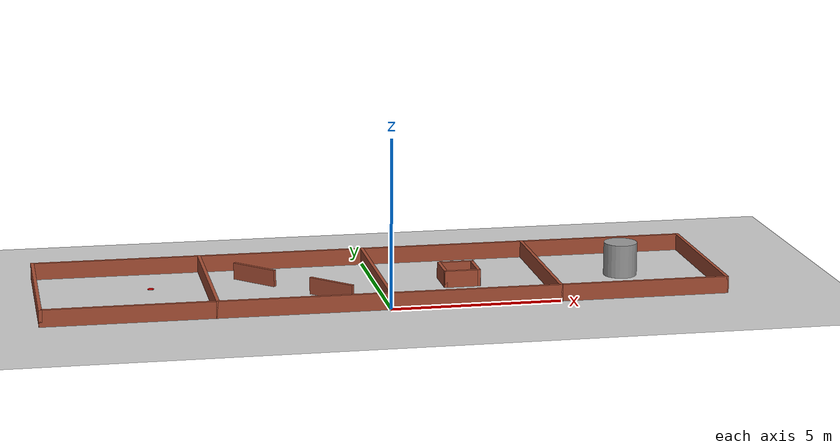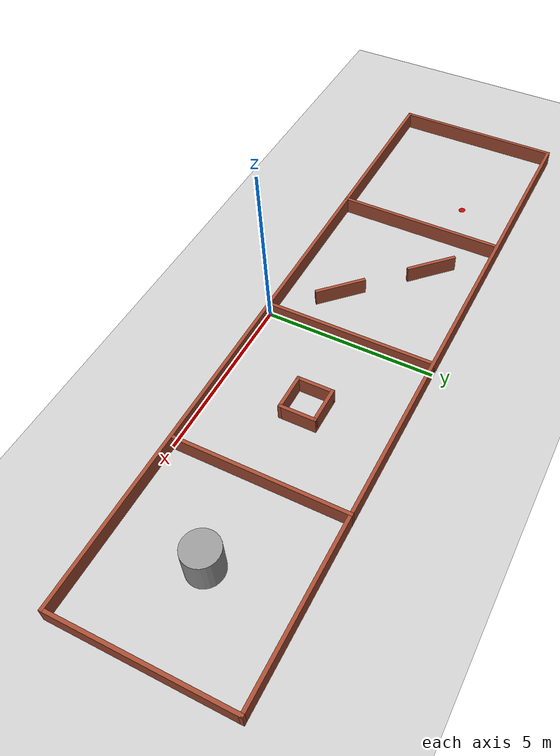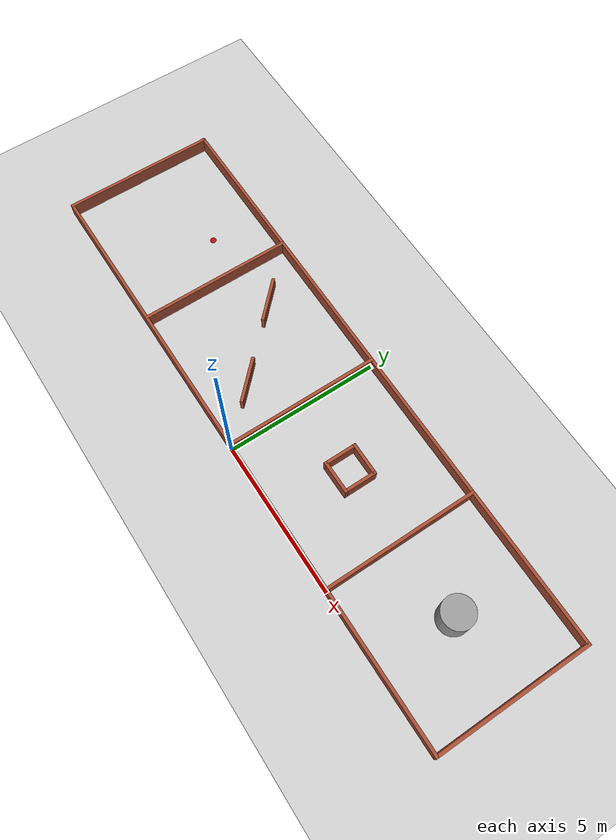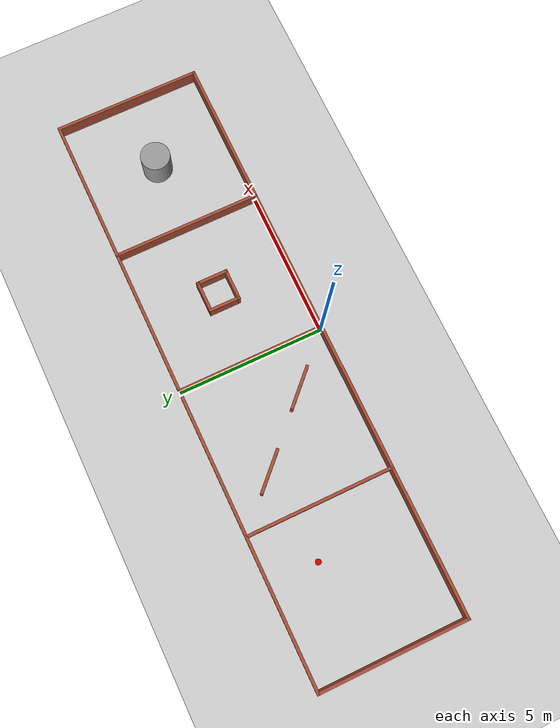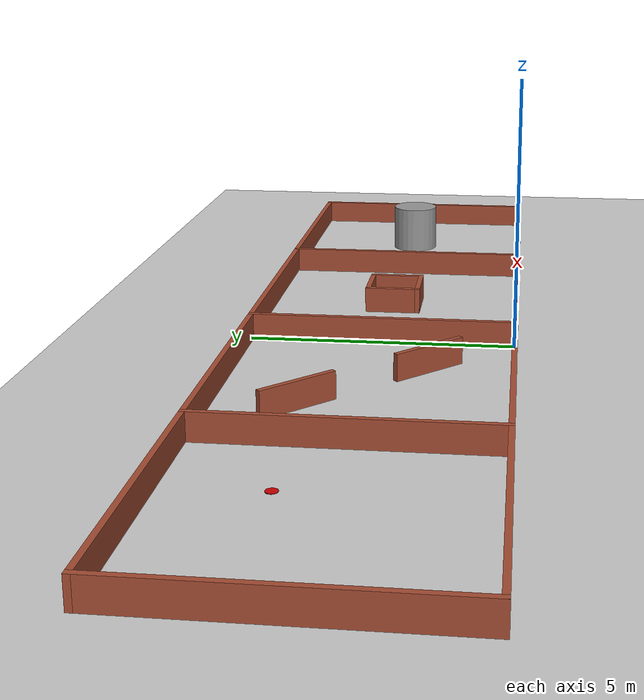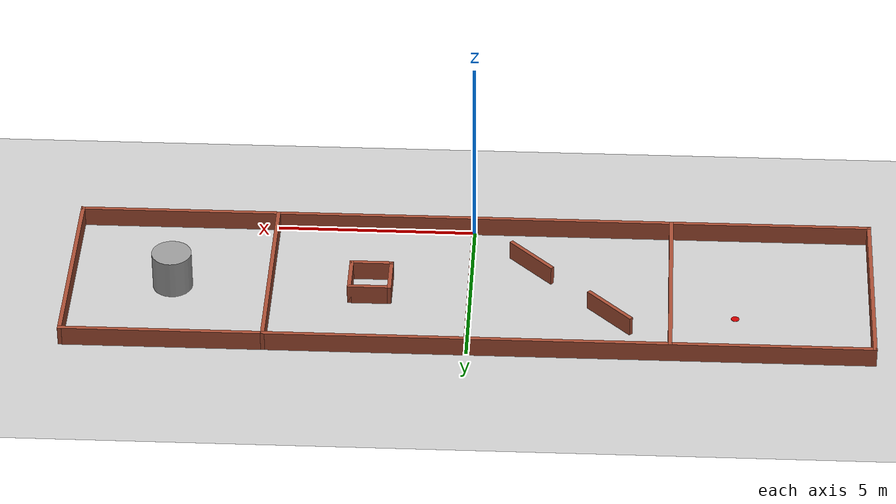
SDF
<sdf version="1.7">
 <world name="default">
  <light name="sun" type="directional">
   <pose>0 0 10 0 -0 0</pose>
   <diffuse>0.8 0.8 0.8 1</diffuse>
   <specular>0.2 0.2 0.2 1</specular>
   <attenuation>
    <range>1000</range>
    <constant>0.9</constant>
    <linear>0.01</linear>
    <quadratic>0.001</quadratic>
   </attenuation>
   <direction>-0.5 0.1 -0.9</direction>
   <spot><inner_angle>0</inner_angle><outer_angle>0</outer_angle><falloff>0</falloff></spot>
  </light>
  <model name="ground_plane">
   <static>1</static>
   <link name="link">
    <collision name="collision">
     <geometry><plane><normal>0 0 1</normal><size>100 100</size></plane></geometry>
     <surface>
      <contact><collide_bitmask>65535</collide_bitmask></contact>
      <friction><ode><mu>100</mu><mu2>50</mu2></ode></friction>
     </surface>
    </collision>
    <visual name="visual">
     <cast_shadows>0</cast_shadows>
     <geometry><plane><normal>0 0 1</normal><size>100 100</size></plane></geometry>
     <material>
      <script><uri>file://media/materials/scripts/gazebo.material</uri><name>Gazebo/Grey</name></script>
     </material>
    </visual>
   </link>
  </model>
  <gravity>0 0 -9.8</gravity>
  <magnetic_field>6e-06 2.3e-05 -4.2e-05</magnetic_field>
  <atmosphere type="adiabatic"/>
  <physics type="ode">
   <max_step_size>0.001</max_step_size>
   <real_time_factor>1</real_time_factor>
   <real_time_update_rate>1000</real_time_update_rate>
  </physics>
  <scene><ambient>0.4 0.4 0.4 1</ambient><background>0.7 0.7 0.7 1</background><shadows>1</shadows></scene>
  <spherical_coordinates>
   <surface_model>EARTH_WGS84</surface_model>
   <latitude_deg>0</latitude_deg>
   <longitude_deg>0</longitude_deg>
   <elevation>0</elevation>
   <heading_deg>0</heading_deg>
  </spherical_coordinates>
  <model name="tb3_smp_0">
   <pose>-0 2.5 0 0 -0 0</pose>
   <link name="Wall_0">
    <collision name="Wall_0_Collision">
     <geometry><box><size>20.1 0.1 0.5</size></box></geometry>
     <pose>0 0 0.25 0 -0 0</pose>
    </collision>
    <visual name="Wall_0_Visual">
     <pose>0 0 0.25 0 -0 0</pose>
     <geometry><box><size>20.1 0.1 0.5</size></box></geometry>
     <material>
      <script><uri>file://media/materials/scripts/gazebo.material</uri><name>Gazebo/Bricks</name></script>
      <ambient>0.760784 0.662745 0.627451 1</ambient>
     </material>
     <meta><layer>0</layer></meta>
    </visual>
    <pose>0 2.5 0 0 -0 3.14159</pose>
   </link>
   <link name="Wall_1">
    <collision name="Wall_1_Collision">
     <geometry><box><size>5.1 0.1 0.5</size></box></geometry>
     <pose>0 0 0.25 0 -0 0</pose>
    </collision>
    <visual name="Wall_1_Visual">
     <pose>0 0 0.25 0 -0 0</pose>
     <geometry><box><size>5.1 0.1 0.5</size></box></geometry>
     <material>
      <script><uri>file://media/materials/scripts/gazebo.material</uri><name>Gazebo/Bricks</name></script>
      <ambient>0.760784 0.662745 0.627451 1</ambient>
     </material>
     <meta><layer>0</layer></meta>
    </visual>
    <pose>-10 0 0 0 -0 -1.5708</pose>
   </link>
   <link name="Wall_17">
    <collision name="Wall_17_Collision">
     <geometry><box><size>1.51421 0.1 0.5</size></box></geometry>
     <pose>0 0 0.25 0 -0 0</pose>
    </collision>
    <visual name="Wall_17_Visual">
     <pose>0 0 0.25 0 -0 0</pose>
     <geometry><box><size>1.51421 0.1 0.5</size></box></geometry>
     <material>
      <script><uri>file://media/materials/scripts/gazebo.material</uri><name>Gazebo/Bricks</name></script>
      <ambient>0.760784 0.662745 0.627451 1</ambient>
     </material>
     <meta><layer>0</layer></meta>
    </visual>
    <pose>-3.5 1 0 0 -0 2.35619</pose>
   </link>
   <link name="Wall_19">
    <collision name="Wall_19_Collision">
     <geometry><box><size>1.51421 0.1 0.5</size></box></geometry>
     <pose>0 0 0.25 0 -0 0</pose>
    </collision>
    <visual name="Wall_19_Visual">
     <pose>0 0 0.25 0 -0 0</pose>
     <geometry><box><size>1.51421 0.1 0.5</size></box></geometry>
     <material>
      <script><uri>file://media/materials/scripts/gazebo.material</uri><name>Gazebo/Bricks</name></script>
      <ambient>0.760784 0.662745 0.627451 1</ambient>
     </material>
     <meta><layer>0</layer></meta>
    </visual>
    <pose>-1.5 -1 0 0 -0 2.35619</pose>
   </link>
   <link name="Wall_2">
    <collision name="Wall_2_Collision">
     <geometry><box><size>20.1 0.1 0.5</size></box></geometry>
     <pose>0 0 0.25 0 -0 0</pose>
    </collision>
    <visual name="Wall_2_Visual">
     <pose>0 0 0.25 0 -0 0</pose>
     <geometry><box><size>20.1 0.1 0.5</size></box></geometry>
     <material>
      <script><uri>file://media/materials/scripts/gazebo.material</uri><name>Gazebo/Bricks</name></script>
      <ambient>0.760784 0.662745 0.627451 1</ambient>
     </material>
     <meta><layer>0</layer></meta>
    </visual>
    <pose>0 -2.5 0 0 -0 0</pose>
   </link>
   <link name="Wall_21">
    <collision name="Wall_21_Collision">
     <geometry><box><size>1.1 0.1 0.5</size></box></geometry>
     <pose>0 0 0.25 0 -0 0</pose>
    </collision>
    <visual name="Wall_21_Visual">
     <pose>0 0 0.25 0 -0 0</pose>
     <geometry><box><size>1.1 0.1 0.5</size></box></geometry>
     <material>
      <script><uri>file://media/materials/scripts/gazebo.material</uri><name>Gazebo/Bricks</name></script>
      <ambient>0.760784 0.662745 0.627451 1</ambient>
     </material>
     <meta><layer>0</layer></meta>
    </visual>
    <pose>2.5 -0.5 0 0 -0 3.14159</pose>
   </link>
   <link name="Wall_22">
    <collision name="Wall_22_Collision">
     <geometry><box><size>1.1 0.1 0.5</size></box></geometry>
     <pose>0 0 0.25 0 -0 0</pose>
    </collision>
    <visual name="Wall_22_Visual">
     <pose>0 0 0.25 0 -0 0</pose>
     <geometry><box><size>1.1 0.1 0.5</size></box></geometry>
     <material>
      <script><uri>file://media/materials/scripts/gazebo.material</uri><name>Gazebo/Bricks</name></script>
      <ambient>0.760784 0.662745 0.627451 1</ambient>
     </material>
     <meta><layer>0</layer></meta>
    </visual>
    <pose>2 0 0 0 -0 1.5708</pose>
   </link>
   <link name="Wall_23">
    <collision name="Wall_23_Collision">
     <geometry><box><size>1.1 0.1 0.5</size></box></geometry>
     <pose>0 0 0.25 0 -0 0</pose>
    </collision>
    <visual name="Wall_23_Visual">
     <pose>0 0 0.25 0 -0 0</pose>
     <geometry><box><size>1.1 0.1 0.5</size></box></geometry>
     <material>
      <script><uri>file://media/materials/scripts/gazebo.material</uri><name>Gazebo/Bricks</name></script>
      <ambient>0.760784 0.662745 0.627451 1</ambient>
     </material>
     <meta><layer>0</layer></meta>
    </visual>
    <pose>2.5 0.5 0 0 -0 0</pose>
   </link>
   <link name="Wall_25">
    <collision name="Wall_25_Collision">
     <geometry><box><size>1.1 0.1 0.5</size></box></geometry>
     <pose>0 0 0.25 0 -0 0</pose>
    </collision>
    <visual name="Wall_25_Visual">
     <pose>0 0 0.25 0 -0 0</pose>
     <geometry><box><size>1.1 0.1 0.5</size></box></geometry>
     <material>
      <script><uri>file://media/materials/scripts/gazebo.material</uri><name>Gazebo/Bricks</name></script>
      <ambient>0.760784 0.662745 0.627451 1</ambient>
     </material>
     <meta><layer>0</layer></meta>
    </visual>
    <pose>3 0 0 0 -0 -1.5708</pose>
   </link>
   <link name="Wall_3">
    <collision name="Wall_3_Collision">
     <geometry><box><size>5.1 0.1 0.5</size></box></geometry>
     <pose>0 0 0.25 0 -0 0</pose>
    </collision>
    <visual name="Wall_3_Visual">
     <pose>0 0 0.25 0 -0 0</pose>
     <geometry><box><size>5.1 0.1 0.5</size></box></geometry>
     <material>
      <script><uri>file://media/materials/scripts/gazebo.material</uri><name>Gazebo/Bricks</name></script>
      <ambient>0.760784 0.662745 0.627451 1</ambient>
     </material>
     <meta><layer>0</layer></meta>
    </visual>
    <pose>10 0 0 0 -0 1.5708</pose>
   </link>
   <link name="Wall_5">
    <collision name="Wall_5_Collision">
     <geometry><box><size>5.1 0.1 0.5</size></box></geometry>
     <pose>0 0 0.25 0 -0 0</pose>
    </collision>
    <visual name="Wall_5_Visual">
     <pose>0 0 0.25 0 -0 0</pose>
     <geometry><box><size>5.1 0.1 0.5</size></box></geometry>
     <material>
      <script><uri>file://media/materials/scripts/gazebo.material</uri><name>Gazebo/Bricks</name></script>
      <ambient>0.760784 0.662745 0.627451 1</ambient>
     </material>
     <meta><layer>0</layer></meta>
    </visual>
    <pose>-5 0 0 0 -0 1.5708</pose>
   </link>
   <link name="Wall_7">
    <collision name="Wall_7_Collision">
     <geometry><box><size>5.1 0.1 0.5</size></box></geometry>
     <pose>0 0 0.25 0 -0 0</pose>
    </collision>
    <visual name="Wall_7_Visual">
     <pose>0 0 0.25 0 -0 0</pose>
     <geometry><box><size>5.1 0.1 0.5</size></box></geometry>
     <material>
      <script><uri>file://media/materials/scripts/gazebo.material</uri><name>Gazebo/Bricks</name></script>
      <ambient>0.760784 0.662745 0.627451 1</ambient>
     </material>
     <meta><layer>0</layer></meta>
    </visual>
    <pose>0 0 0 0 -0 1.5708</pose>
   </link>
   <link name="Wall_9">
    <collision name="Wall_9_Collision">
     <geometry><box><size>5.1 0.1 0.5</size></box></geometry>
     <pose>0 0 0.25 0 -0 0</pose>
    </collision>
    <visual name="Wall_9_Visual">
     <pose>0 0 0.25 0 -0 0</pose>
     <geometry><box><size>5.1 0.1 0.5</size></box></geometry>
     <material>
      <script><uri>file://media/materials/scripts/gazebo.material</uri><name>Gazebo/Bricks</name></script>
      <ambient>0.760784 0.662745 0.627451 1</ambient>
     </material>
     <meta><layer>0</layer></meta>
    </visual>
    <pose>5 0 0 0 -0 1.5708</pose>
   </link>
   <static>1</static>
  </model>
  <model name="target_red">
   <link name="link">
    <inertial>
     <mass>1</mass>
     <inertia><ixx>0.145833</ixx><ixy>0</ixy><ixz>0</ixz><iyy>0.145833</iyy><iyz>0</iyz><izz>0.125</izz></inertia>
    </inertial>
    <visual name="visual">
     <geometry><cylinder><radius>0.1</radius><length>0.01</length></cylinder></geometry>
     <material>
      <script><name>Gazebo/Grey</name><uri>file://media/materials/scripts/gazebo.material</uri></script>
      <shader type="pixel"><normal_map>__default__</normal_map></shader>
      <ambient>0.8 0 0 1</ambient>
      <diffuse>0.8 0 0 1</diffuse>
      <specular>0.8 0 0 1</specular>
      <emissive>0 0 0 1</emissive>
     </material>
    </visual>
    <collision name="collision">
     <geometry><cylinder><radius>0.1</radius><length>0.01</length></cylinder></geometry>
     <surface>
      <friction>
       <ode><mu>1</mu><mu2>1</mu2><fdir1>0 0 0</fdir1><slip1>0</slip1><slip2>0</slip2></ode>
       <torsional>
        <coefficient>1</coefficient>
        <patch_radius>0</patch_radius>
        <surface_radius>0</surface_radius>
        <use_patch_radius>1</use_patch_radius>
        <ode><slip>0</slip></ode>
       </torsional>
      </friction>
      <bounce><restitution_coefficient>0</restitution_coefficient><threshold>1e+06</threshold></bounce>
      <contact>
       <collide_without_contact>0</collide_without_contact>
       <collide_without_contact_bitmask>1</collide_without_contact_bitmask>
       <collide_bitmask>1</collide_bitmask>
       <ode>
        <soft_cfm>0</soft_cfm>
        <soft_erp>0.2</soft_erp>
        <kp>1e+13</kp>
        <kd>1</kd>
        <max_vel>0.01</max_vel>
        <min_depth>0</min_depth>
       </ode>
       <bullet>
        <split_impulse>1</split_impulse>
        <split_impulse_penetration_threshold>-0.01</split_impulse_penetration_threshold>
        <soft_cfm>0</soft_cfm>
        <soft_erp>0.2</soft_erp>
        <kp>1e+13</kp>
        <kd>1</kd>
       </bullet>
      </contact>
     </surface>
    </collision>
   </link>
   <static>0</static>
   <pose>-6.61312 3.30642 0.004991 0 -0 0</pose>
  </model>
  <model name="unit_cylinder">
   <link name="link_1">
    <inertial>
     <mass>1</mass>
     <inertia><ixx>0.145833</ixx><ixy>0</ixy><ixz>0</ixz><iyy>0.145833</iyy><iyz>0</iyz><izz>0.125</izz></inertia>
    </inertial>
    <pose>-0.033889 0.005644 0 0 -0 0</pose>
    <visual name="visual">
     <geometry><cylinder><radius>0.5</radius><length>1</length></cylinder></geometry>
     <material>
      <lighting>1</lighting>
      <script><uri>file://media/materials/scripts/gazebo.material</uri><name>Gazebo/Grey</name></script>
      <shader type="pixel"><normal_map>__default__</normal_map></shader>
     </material>
    </visual>
    <collision name="collision">
     <geometry><cylinder><radius>0.5</radius><length>1</length></cylinder></geometry>
     <surface>
      <friction>
       <ode><mu>1</mu><mu2>1</mu2><fdir1>0 0 0</fdir1><slip1>0</slip1><slip2>0</slip2></ode>
       <torsional>
        <coefficient>1</coefficient>
        <patch_radius>0</patch_radius>
        <surface_radius>0</surface_radius>
        <use_patch_radius>1</use_patch_radius>
        <ode><slip>0</slip></ode>
       </torsional>
      </friction>
      <bounce><restitution_coefficient>0</restitution_coefficient><threshold>1e+06</threshold></bounce>
      <contact>
       <collide_without_contact>0</collide_without_contact>
       <collide_without_contact_bitmask>1</collide_without_contact_bitmask>
       <collide_bitmask>1</collide_bitmask>
       <ode>
        <soft_cfm>0</soft_cfm>
        <soft_erp>0.2</soft_erp>
        <kp>1e+13</kp>
        <kd>1</kd>
        <max_vel>0.01</max_vel>
        <min_depth>0</min_depth>
       </ode>
       <bullet>
        <split_impulse>1</split_impulse>
        <split_impulse_penetration_threshold>-0.01</split_impulse_penetration_threshold>
        <soft_cfm>0</soft_cfm>
        <soft_erp>0.2</soft_erp>
        <kp>1e+13</kp>
        <kd>1</kd>
       </bullet>
      </contact>
     </surface>
    </collision>
   </link>
   <static>0</static>
   <pose>7.5 2.5 0.5 0 -0 0</pose>
  </model>
 </world>
</sdf>
